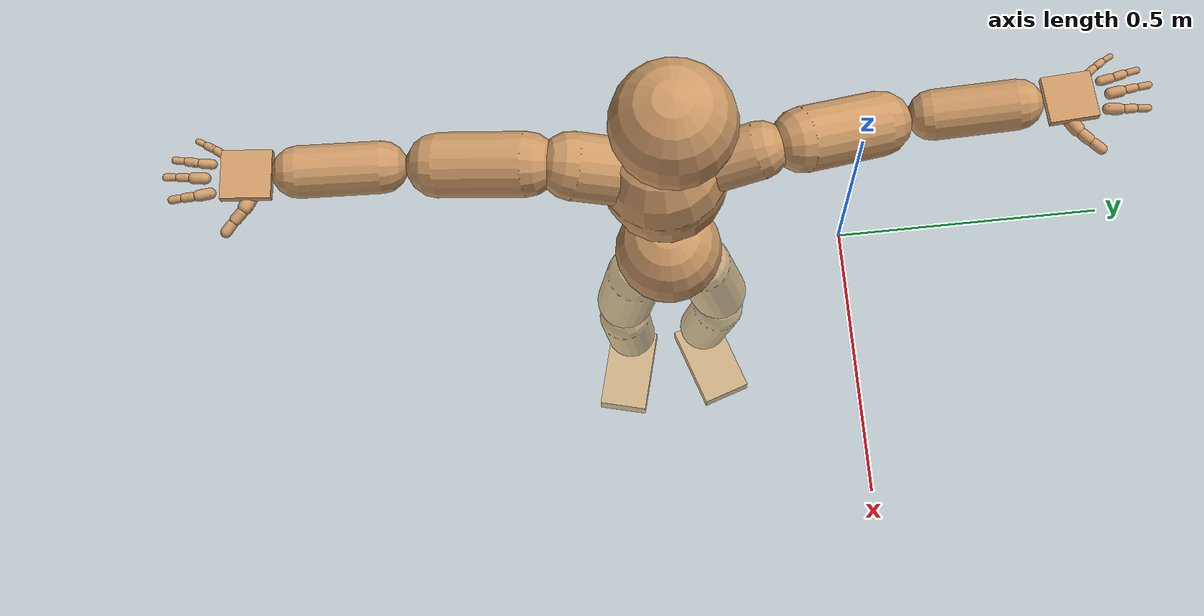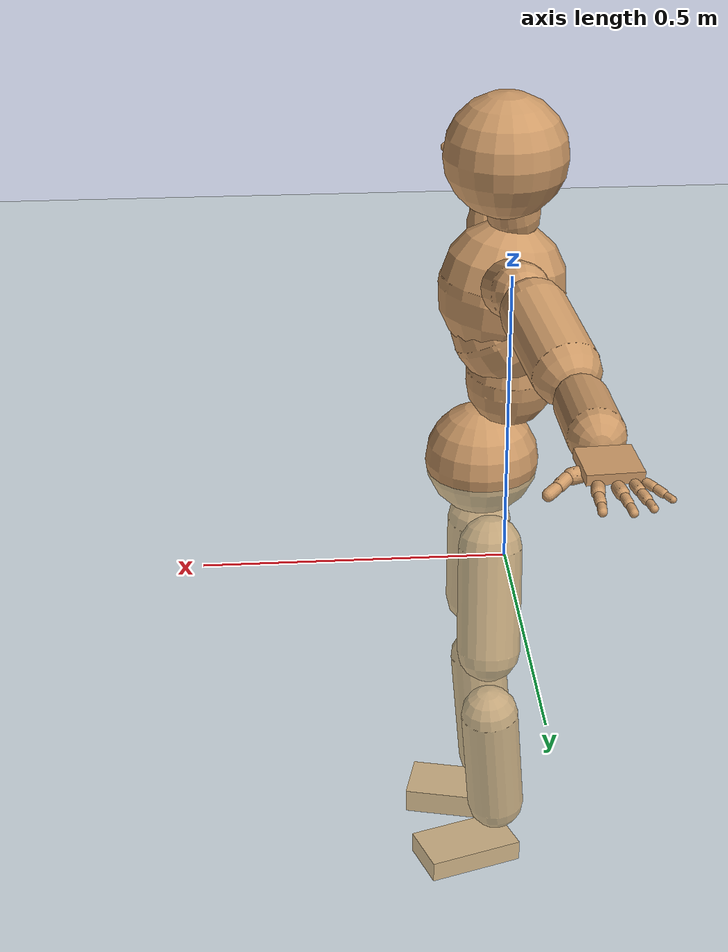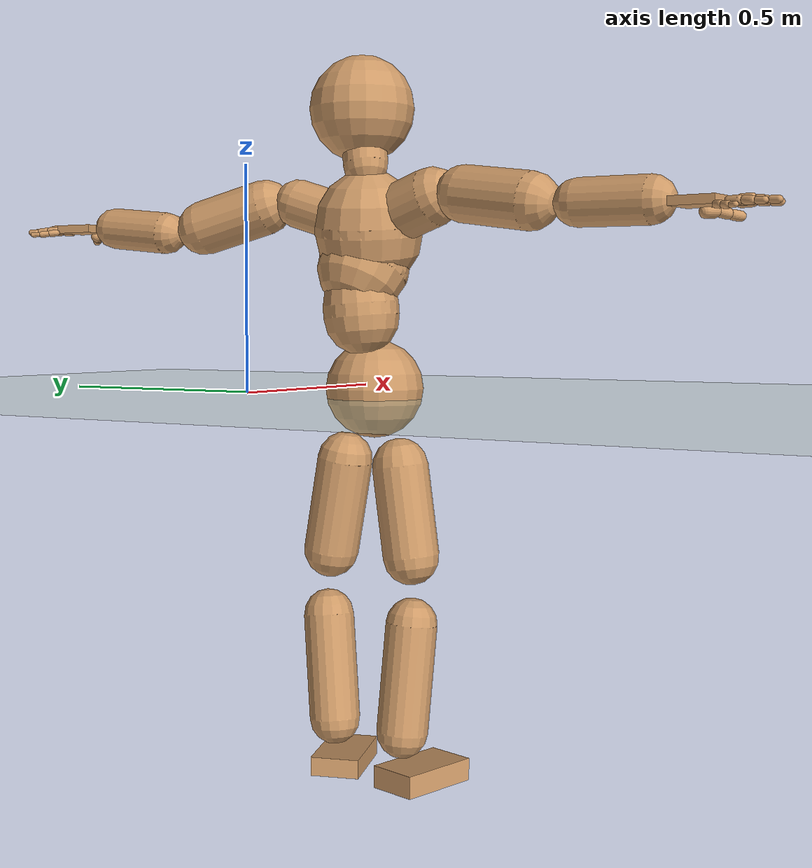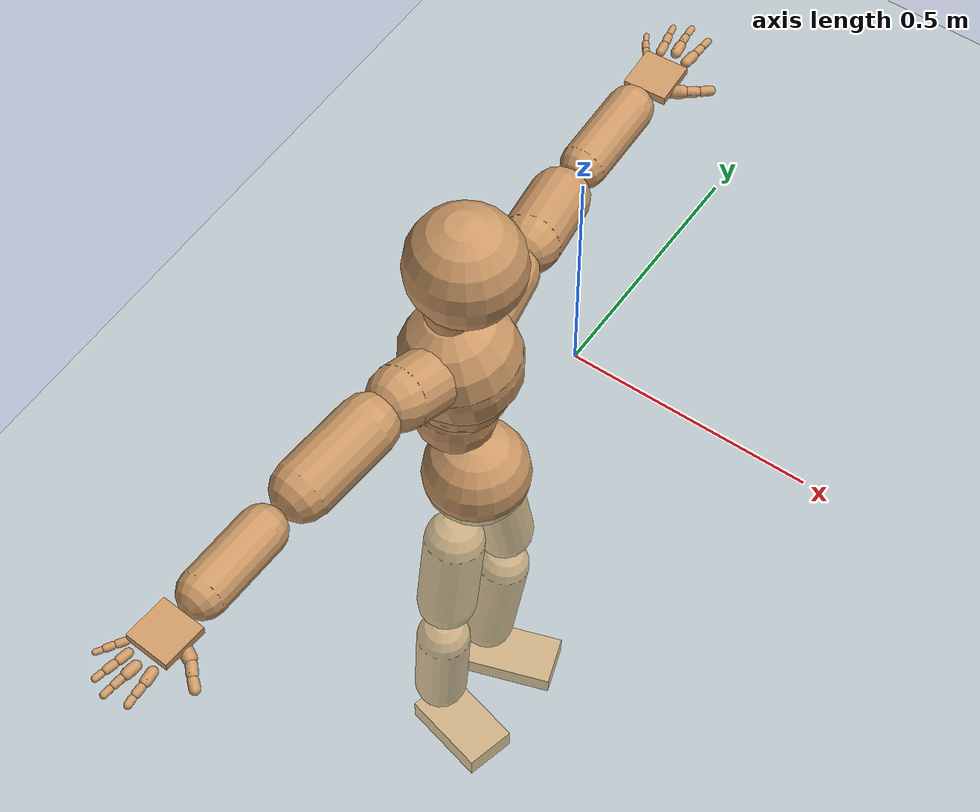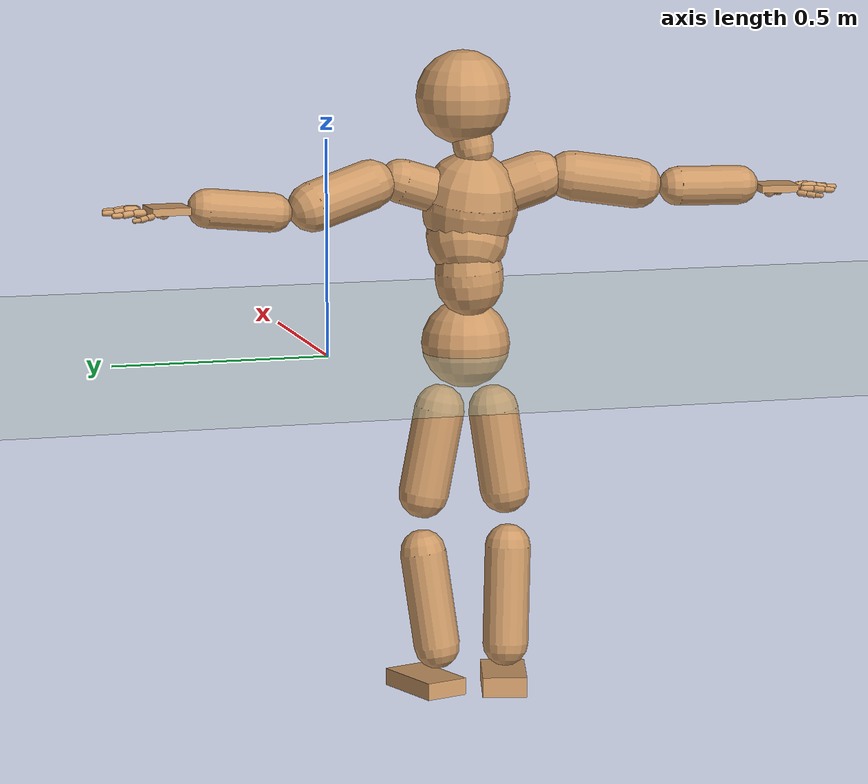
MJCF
<mujoco model="humanoid">
  <compiler coordinate="local" angle="radian"/>
  <default>
    <joint damping="0.0" armature="0.01" stiffness="0.0" limited="true"/>
    <geom conaffinity="1" condim="3" contype="7" margin="0.001" rgba="0.8 0.6 .4 1"/>
  </default>
  <asset>
    <texture type="skybox" builtin="gradient" rgb1=".4 .5 .6" rgb2="0 0 0" width="100" height="100"/>
    <texture builtin="flat" height="1278" mark="cross" markrgb="1 1 1" name="texgeom" random="0.01" rgb1="0.8 0.6 0.4" rgb2="0.8 0.6 0.4" type="cube" width="127"/>
    <texture builtin="checker" height="100" name="texplane" rgb1="0 0 0" rgb2="0.8 0.8 0.8" type="2d" width="100"/>
    <material name="MatPlane" reflectance="0.5" shininess="1" specular="1" texrepeat="60 60" texture="texplane"/>
    <material name="geom" texture="texgeom" texuniform="true"/>
  </asset>
  <worldbody>
    <light cutoff="100" diffuse="1 1 1" dir="-0 0 -1.3" directional="true" exponent="1" pos="0 0 1.3" specular=".1 .1 .1"/>
    <geom conaffinity="1" condim="3" name="floor" pos="0 0 0" rgba="0.8 0.9 0.8 1" size="100 100 .2" type="plane" material="MatPlane"/>
    <body name="Pelvis" pos="0.0018 -0.3282 0.0179">
      <freejoint name="Pelvis"/>
      <geom type="sphere" contype="1" conaffinity="1" density="500" size="0.1025" pos="0.0000 0.0000 0.0000" name="Pelvis"/>
      <body name="L_Hip" pos="-0.0129 0.0535 -0.0848">
        <joint name="L_Hip_x" type="hinge" pos="0 0 0" axis="1 0 0" stiffness="800" damping="80" armature="0.02" range="-180.0000 180.0000"/>
        <joint name="L_Hip_y" type="hinge" pos="0 0 0" axis="0 1 0" stiffness="800" damping="80" armature="0.02" range="-180.0000 180.0000"/>
        <joint name="L_Hip_z" type="hinge" pos="0 0 0" axis="0 0 1" stiffness="800" damping="80" armature="0.02" range="-180.0000 180.0000"/>
        <geom type="capsule" contype="1" conaffinity="1" density="500" fromto="0.0012 0.0123 -0.0655 0.0046 0.0494 -0.2622" size="0.0583" name="L_Hip"/>
        <body name="L_Knee" pos="0.0058 0.0617 -0.3277">
          <joint name="L_Knee_x" type="hinge" pos="0 0 0" axis="1 0 0" stiffness="800" damping="80" armature="0.02" range="-180.0000 180.0000"/>
          <joint name="L_Knee_y" type="hinge" pos="0 0 0" axis="0 1 0" stiffness="800" damping="80" armature="0.02" range="-180.0000 180.0000"/>
          <joint name="L_Knee_z" type="hinge" pos="0 0 0" axis="0 0 1" stiffness="800" damping="80" armature="0.02" range="-180.0000 180.0000"/>
          <geom type="capsule" contype="1" conaffinity="1" density="500" fromto="-0.0064 -0.0092 -0.0733 -0.0258 -0.0369 -0.2932" size="0.0535" name="L_Knee"/>
          <body name="L_Ankle" pos="-0.0322 -0.0461 -0.3664">
            <joint name="L_Ankle_x" type="hinge" pos="0 0 0" axis="1 0 0" stiffness="800" damping="80" armature="0.02" range="-180.0000 180.0000"/>
            <joint name="L_Ankle_y" type="hinge" pos="0 0 0" axis="0 1 0" stiffness="800" damping="80" armature="0.02" range="-180.0000 180.0000"/>
            <joint name="L_Ankle_z" type="hinge" pos="0 0 0" axis="0 0 1" stiffness="800" damping="80" armature="0.02" range="-180.0000 180.0000"/>
            <geom type="box" contype="1" conaffinity="1" density="500" pos="0.0636 0.0212 -0.0259" size="0.0906 0.0519 0.0199" quat="0.9870 0.0000 0.0000 0.1605" name="L_Ankle"/>
            <body name="L_Toe" pos="0.1272 0.0425 -0.0518">
              <joint name="L_Toe_x" type="hinge" pos="0 0 0" axis="1 0 0" stiffness="500" damping="50" armature="0.02" range="-180.0000 180.0000"/>
              <joint name="L_Toe_y" type="hinge" pos="0 0 0" axis="0 1 0" stiffness="500" damping="50" armature="0.02" range="-180.0000 180.0000"/>
              <joint name="L_Toe_z" type="hinge" pos="0 0 0" axis="0 0 1" stiffness="500" damping="50" armature="0.02" range="-180.0000 180.0000"/>
              <geom type="box" contype="1" conaffinity="1" density="500" pos="0.0000 0.0000 0.0278" size="0.0011 0.0025 0.0011" quat="0.9863 0.0000 0.0000 0.1650" name="L_Toe"/>
            </body>
          </body>
        </body>
      </body>
      <body name="R_Hip" pos="-0.005 -0.0561 -0.096">
        <joint name="R_Hip_x" type="hinge" pos="0 0 0" axis="1 0 0" stiffness="800" damping="80" armature="0.02" range="-180.0000 180.0000"/>
        <joint name="R_Hip_y" type="hinge" pos="0 0 0" axis="0 1 0" stiffness="800" damping="80" armature="0.02" range="-180.0000 180.0000"/>
        <joint name="R_Hip_z" type="hinge" pos="0 0 0" axis="0 0 1" stiffness="800" damping="80" armature="0.02" range="-180.0000 180.0000"/>
        <geom type="capsule" contype="1" conaffinity="1" density="500" fromto="-0.0006 -0.0092 -0.0625 -0.0023 -0.0368 -0.2498" size="0.0583" name="R_Hip"/>
        <body name="R_Knee" pos="-0.0029 -0.046 -0.3123">
          <joint name="R_Knee_x" type="hinge" pos="0 0 0" axis="1 0 0" stiffness="800" damping="80" armature="0.02" range="-180.0000 180.0000"/>
          <joint name="R_Knee_y" type="hinge" pos="0 0 0" axis="0 1 0" stiffness="800" damping="80" armature="0.02" range="-180.0000 180.0000"/>
          <joint name="R_Knee_z" type="hinge" pos="0 0 0" axis="0 0 1" stiffness="800" damping="80" armature="0.02" range="-180.0000 180.0000"/>
          <geom type="capsule" contype="1" conaffinity="1" density="500" fromto="-0.0063 0.0036 -0.0755 -0.0253 0.0144 -0.3019" size="0.0534" name="R_Knee"/>
          <body name="R_Ankle" pos="-0.0316 0.018 -0.3773">
            <joint name="R_Ankle_x" type="hinge" pos="0 0 0" axis="1 0 0" stiffness="800" damping="80" armature="0.02" range="-180.0000 180.0000"/>
            <joint name="R_Ankle_y" type="hinge" pos="0 0 0" axis="0 1 0" stiffness="800" damping="80" armature="0.02" range="-180.0000 180.0000"/>
            <joint name="R_Ankle_z" type="hinge" pos="0 0 0" axis="0 0 1" stiffness="800" damping="80" armature="0.02" range="-180.0000 180.0000"/>
            <geom type="box" contype="1" conaffinity="1" density="500" pos="0.0671 -0.0169 -0.0255" size="0.0906 0.0519 0.0235" quat="0.9924 0.0000 0.0000 -0.1228" name="R_Ankle"/>
            <body name="R_Toe" pos="0.1342 -0.0337 -0.051">
              <joint name="R_Toe_x" type="hinge" pos="0 0 0" axis="1 0 0" stiffness="500" damping="50" armature="0.02" range="-180.0000 180.0000"/>
              <joint name="R_Toe_y" type="hinge" pos="0 0 0" axis="0 1 0" stiffness="500" damping="50" armature="0.02" range="-180.0000 180.0000"/>
              <joint name="R_Toe_z" type="hinge" pos="0 0 0" axis="0 0 1" stiffness="500" damping="50" armature="0.02" range="-180.0000 180.0000"/>
              <geom type="box" contype="1" conaffinity="1" density="500" pos="0.0000 0.0000 0.0238" size="0.001 0.0025 0.0011" quat="0.9935 0.0000 0.0000 -0.1141" name="R_Toe"/>
            </body>
          </body>
        </body>
      </body>
      <body name="Torso" pos="-0.0456 -0.0006 0.0979">
        <joint name="Torso_x" type="hinge" pos="0 0 0" axis="1 0 0" stiffness="1000" damping="100" armature="0.02" range="-180.0000 180.0000"/>
        <joint name="Torso_y" type="hinge" pos="0 0 0" axis="0 1 0" stiffness="1000" damping="100" armature="0.02" range="-180.0000 180.0000"/>
        <joint name="Torso_z" type="hinge" pos="0 0 0" axis="0 0 1" stiffness="1000" damping="100" armature="0.02" range="-180.0000 180.0000"/>
        <geom type="capsule" contype="1" conaffinity="1" density="500" fromto="-0.0014 0.0064 0.0781 -0.0009 0.0043 0.0521" size="0.0785" name="Torso"/>
        <body name="Spine" pos="-0.0023 0.0107 0.1302">
          <joint name="Spine_x" type="hinge" pos="0 0 0" axis="1 0 0" stiffness="1000" damping="100" armature="0.02" range="-180.0000 180.0000"/>
          <joint name="Spine_y" type="hinge" pos="0 0 0" axis="0 1 0" stiffness="1000" damping="100" armature="0.02" range="-180.0000 180.0000"/>
          <joint name="Spine_z" type="hinge" pos="0 0 0" axis="0 0 1" stiffness="1000" damping="100" armature="0.02" range="-180.0000 180.0000"/>
          <geom type="capsule" contype="1" conaffinity="1" density="500" fromto="0.0160 -0.0055 0.0314 0.0106 -0.0037 0.0209" size="0.0944" name="Spine"/>
          <body name="Chest" pos="0.0266 -0.0092 0.0523">
            <joint name="Chest_x" type="hinge" pos="0 0 0" axis="1 0 0" stiffness="1000" damping="100" armature="0.02" range="-180.0000 180.0000"/>
            <joint name="Chest_y" type="hinge" pos="0 0 0" axis="0 1 0" stiffness="1000" damping="100" armature="0.02" range="-180.0000 180.0000"/>
            <joint name="Chest_z" type="hinge" pos="0 0 0" axis="0 0 1" stiffness="1000" damping="100" armature="0.02" range="-180.0000 180.0000"/>
            <geom type="capsule" contype="1" conaffinity="1" density="500" fromto="-0.0091 -0.0038 0.0574 -0.0060 -0.0025 0.0383" size="0.1117" name="Chest"/>
            <body name="Neck" pos="-0.0301 -0.012 0.1488">
              <joint name="Neck_x" type="hinge" pos="0 0 0" axis="1 0 0" stiffness="500" damping="50" armature="0.02" range="-180.0000 180.0000"/>
              <joint name="Neck_y" type="hinge" pos="0 0 0" axis="0 1 0" stiffness="500" damping="50" armature="0.02" range="-180.0000 180.0000"/>
              <joint name="Neck_z" type="hinge" pos="0 0 0" axis="0 0 1" stiffness="500" damping="50" armature="0.02" range="-180.0000 180.0000"/>
              <geom type="capsule" contype="1" conaffinity="1" density="500" fromto="0.0047 0.0051 0.0290 0.0190 0.0203 0.1159" size="0.046" name="Neck"/>
              <body name="Head" pos="0.0237 0.0253 0.1449">
                <joint name="Head_x" type="hinge" pos="0 0 0" axis="1 0 0" stiffness="500" damping="50" armature="0.02" range="-180.0000 180.0000"/>
                <joint name="Head_y" type="hinge" pos="0 0 0" axis="0 1 0" stiffness="500" damping="50" armature="0.02" range="-180.0000 180.0000"/>
                <joint name="Head_z" type="hinge" pos="0 0 0" axis="0 0 1" stiffness="500" damping="50" armature="0.02" range="-180.0000 180.0000"/>
                <geom type="sphere" contype="1" conaffinity="1" density="500" size="0.1079" pos="0.0000 0.0000 0.0000" name="Head"/>
              </body>
            </body>
            <body name="L_Thorax" pos="-0.0062 0.0439 0.0687">
              <joint name="L_Thorax_x" type="hinge" pos="0 0 0" axis="1 0 0" stiffness="500" damping="50" armature="0.02" range="-180.0000 180.0000"/>
              <joint name="L_Thorax_y" type="hinge" pos="0 0 0" axis="0 1 0" stiffness="500" damping="50" armature="0.02" range="-180.0000 180.0000"/>
              <joint name="L_Thorax_z" type="hinge" pos="0 0 0" axis="0 0 1" stiffness="500" damping="50" armature="0.02" range="-180.0000 180.0000"/>
              <geom type="capsule" contype="1" conaffinity="1" density="500" fromto="-0.0028 0.0297 0.0095 -0.0112 0.1186 0.0379" size="0.0511" name="L_Thorax"/>
              <body name="L_Shoulder" pos="-0.0139 0.1483 0.0473">
                <joint name="L_Shoulder_x" type="hinge" pos="0 0 0" axis="1 0 0" stiffness="500" damping="50" armature="0.02" range="-180.0000 180.0000"/>
                <joint name="L_Shoulder_y" type="hinge" pos="0 0 0" axis="0 1 0" stiffness="500" damping="50" armature="0.02" range="-180.0000 180.0000"/>
                <joint name="L_Shoulder_z" type="hinge" pos="0 0 0" axis="0 0 1" stiffness="500" damping="50" armature="0.02" range="-180.0000 180.0000"/>
                <geom type="capsule" contype="1" conaffinity="1" density="500" fromto="-0.0106 0.0468 -0.0137 -0.0425 0.1874 -0.0549" size="0.0577" name="L_Shoulder"/>
                <body name="L_Elbow" pos="-0.0531 0.2342 -0.0686">
                  <joint name="L_Elbow_x" type="hinge" pos="0 0 0" axis="1 0 0" stiffness="500" damping="50" armature="0.02" range="-720.0000 720.0000"/>
                  <joint name="L_Elbow_y" type="hinge" pos="0 0 0" axis="0 1 0" stiffness="500" damping="50" armature="0.02" range="-720.0000 720.0000"/>
                  <joint name="L_Elbow_z" type="hinge" pos="0 0 0" axis="0 0 1" stiffness="500" damping="50" armature="0.02" range="-720.0000 720.0000"/>
                  <geom type="capsule" contype="1" conaffinity="1" density="500" fromto="0.0004 0.0494 0.0051 0.0016 0.1978 0.0203" size="0.0448" name="L_Elbow"/>
                  <body name="L_Wrist" pos="0.002 0.2472 0.0253">
                    <joint name="L_Wrist_x" type="hinge" pos="0 0 0" axis="1 0 0" stiffness="300" damping="30" armature="0.02" range="-180.0000 180.0000"/>
                    <joint name="L_Wrist_y" type="hinge" pos="0 0 0" axis="0 1 0" stiffness="300" damping="30" armature="0.02" range="-180.0000 180.0000"/>
                    <joint name="L_Wrist_z" type="hinge" pos="0 0 0" axis="0 0 1" stiffness="300" damping="30" armature="0.02" range="-180.0000 180.0000"/>
                    <geom type="box" contype="1" conaffinity="1" density="500" pos="-0.0028 0.0425 -0.0049" size="0.0441 0.0427 0.0085" quat="0.7298 0.0000 0.0000 -0.6837" name="L_Wrist"/>
                    <body name="L_Index1" pos="0.0227 0.1004 -0.0064">
                      <joint name="L_Index1_x" type="hinge" pos="0 0 0" axis="1 0 0" stiffness="100" damping="10" armature="0.02" range="-180.0000 180.0000"/>
                      <joint name="L_Index1_y" type="hinge" pos="0 0 0" axis="0 1 0" stiffness="100" damping="10" armature="0.02" range="-180.0000 180.0000"/>
                      <joint name="L_Index1_z" type="hinge" pos="0 0 0" axis="0 0 1" stiffness="100" damping="10" armature="0.02" range="-180.0000 180.0000"/>
                      <geom type="capsule" contype="1" conaffinity="1" density="500" fromto="0.0008 0.0066 0.0004 0.0033 0.0263 0.0016" size="0.0101" name="L_Index1"/>
                      <body name="L_Index2" pos="0.0041 0.0329 0.0019">
                        <joint name="L_Index2_x" type="hinge" pos="0 0 0" axis="1 0 0" stiffness="100" damping="10" armature="0.02" range="-180.0000 180.0000"/>
                        <joint name="L_Index2_y" type="hinge" pos="0 0 0" axis="0 1 0" stiffness="100" damping="10" armature="0.02" range="-180.0000 180.0000"/>
                        <joint name="L_Index2_z" type="hinge" pos="0 0 0" axis="0 0 1" stiffness="100" damping="10" armature="0.02" range="-180.0000 180.0000"/>
                        <geom type="capsule" contype="1" conaffinity="1" density="500" fromto="-0.0000 0.0046 -0.0005 -0.0001 0.0185 -0.0022" size="0.0081" name="L_Index2"/>
                        <body name="L_Index3" pos="-0.0002 0.0232 -0.0027">
                          <joint name="L_Index3_x" type="hinge" pos="0 0 0" axis="1 0 0" stiffness="100" damping="10" armature="0.02" range="-180.0000 180.0000"/>
                          <joint name="L_Index3_y" type="hinge" pos="0 0 0" axis="0 1 0" stiffness="100" damping="10" armature="0.02" range="-180.0000 180.0000"/>
                          <joint name="L_Index3_z" type="hinge" pos="0 0 0" axis="0 0 1" stiffness="100" damping="10" armature="0.02" range="-180.0000 180.0000"/>
                          <geom type="capsule" contype="1" conaffinity="1" density="500" fromto="0.0004 0.0050 -0.0001 0.0015 0.0201 -0.0006" size="0.0069" name="L_Index3"/>
                        </body>
                      </body>
                    </body>
                    <body name="L_Middle1" pos="-0.003 0.1084 -0.0036">
                      <joint name="L_Middle1_x" type="hinge" pos="0 0 0" axis="1 0 0" stiffness="100" damping="10" armature="0.02" range="-180.0000 180.0000"/>
                      <joint name="L_Middle1_y" type="hinge" pos="0 0 0" axis="0 1 0" stiffness="100" damping="10" armature="0.02" range="-180.0000 180.0000"/>
                      <joint name="L_Middle1_z" type="hinge" pos="0 0 0" axis="0 0 1" stiffness="100" damping="10" armature="0.02" range="-180.0000 180.0000"/>
                      <geom type="capsule" contype="1" conaffinity="1" density="500" fromto="-0.0009 0.0063 0.0001 -0.0035 0.0253 0.0004" size="0.0102" name="L_Middle1"/>
                      <body name="L_Middle2" pos="-0.0044 0.0316 0.0005">
                        <joint name="L_Middle2_x" type="hinge" pos="0 0 0" axis="1 0 0" stiffness="100" damping="10" armature="0.02" range="-180.0000 180.0000"/>
                        <joint name="L_Middle2_y" type="hinge" pos="0 0 0" axis="0 1 0" stiffness="100" damping="10" armature="0.02" range="-180.0000 180.0000"/>
                        <joint name="L_Middle2_z" type="hinge" pos="0 0 0" axis="0 0 1" stiffness="100" damping="10" armature="0.02" range="-180.0000 180.0000"/>
                        <geom type="capsule" contype="1" conaffinity="1" density="500" fromto="-0.0009 0.0048 -0.0005 -0.0035 0.0192 -0.0022" size="0.0075" name="L_Middle2"/>
                        <body name="L_Middle3" pos="-0.0044 0.024 -0.0027">
                          <joint name="L_Middle3_x" type="hinge" pos="0 0 0" axis="1 0 0" stiffness="100" damping="10" armature="0.02" range="-180.0000 180.0000"/>
                          <joint name="L_Middle3_y" type="hinge" pos="0 0 0" axis="0 1 0" stiffness="100" damping="10" armature="0.02" range="-180.0000 180.0000"/>
                          <joint name="L_Middle3_z" type="hinge" pos="0 0 0" axis="0 0 1" stiffness="100" damping="10" armature="0.02" range="-180.0000 180.0000"/>
                          <geom type="capsule" contype="1" conaffinity="1" density="500" fromto="-0.0005 0.0052 -0.0001 -0.0019 0.0208 -0.0006" size="0.0066" name="L_Middle3"/>
                        </body>
                      </body>
                    </body>
                    <body name="L_Pinky1" pos="-0.0474 0.0821 -0.0128">
                      <joint name="L_Pinky1_x" type="hinge" pos="0 0 0" axis="1 0 0" stiffness="100" damping="10" armature="0.02" range="-180.0000 180.0000"/>
                      <joint name="L_Pinky1_y" type="hinge" pos="0 0 0" axis="0 1 0" stiffness="100" damping="10" armature="0.02" range="-180.0000 180.0000"/>
                      <joint name="L_Pinky1_z" type="hinge" pos="0 0 0" axis="0 0 1" stiffness="100" damping="10" armature="0.02" range="-180.0000 180.0000"/>
                      <geom type="capsule" contype="1" conaffinity="1" density="500" fromto="-0.0025 0.0034 -0.0004 -0.0100 0.0135 -0.0015" size="0.0073" name="L_Pinky1"/>
                      <body name="L_Pinky2" pos="-0.0125 0.0169 -0.0019">
                        <joint name="L_Pinky2_x" type="hinge" pos="0 0 0" axis="1 0 0" stiffness="100" damping="10" armature="0.02" range="-180.0000 180.0000"/>
                        <joint name="L_Pinky2_y" type="hinge" pos="0 0 0" axis="0 1 0" stiffness="100" damping="10" armature="0.02" range="-180.0000 180.0000"/>
                        <joint name="L_Pinky2_z" type="hinge" pos="0 0 0" axis="0 0 1" stiffness="100" damping="10" armature="0.02" range="-180.0000 180.0000"/>
                        <geom type="capsule" contype="1" conaffinity="1" density="500" fromto="-0.0023 0.0033 -0.0005 -0.0091 0.0132 -0.0018" size="0.007" name="L_Pinky2"/>
                        <body name="L_Pinky3" pos="-0.0113 0.0165 -0.0023">
                          <joint name="L_Pinky3_x" type="hinge" pos="0 0 0" axis="1 0 0" stiffness="100" damping="10" armature="0.02" range="-180.0000 180.0000"/>
                          <joint name="L_Pinky3_y" type="hinge" pos="0 0 0" axis="0 1 0" stiffness="100" damping="10" armature="0.02" range="-180.0000 180.0000"/>
                          <joint name="L_Pinky3_z" type="hinge" pos="0 0 0" axis="0 0 1" stiffness="100" damping="10" armature="0.02" range="-180.0000 180.0000"/>
                          <geom type="capsule" contype="1" conaffinity="1" density="500" fromto="-0.0019 0.0037 -0.0001 -0.0075 0.0148 -0.0002" size="0.0053" name="L_Pinky3"/>
                        </body>
                      </body>
                    </body>
                    <body name="L_Ring1" pos="-0.029 0.096 -0.0069">
                      <joint name="L_Ring1_x" type="hinge" pos="0 0 0" axis="1 0 0" stiffness="100" damping="10" armature="0.02" range="-180.0000 180.0000"/>
                      <joint name="L_Ring1_y" type="hinge" pos="0 0 0" axis="0 1 0" stiffness="100" damping="10" armature="0.02" range="-180.0000 180.0000"/>
                      <joint name="L_Ring1_z" type="hinge" pos="0 0 0" axis="0 0 1" stiffness="100" damping="10" armature="0.02" range="-180.0000 180.0000"/>
                      <geom type="capsule" contype="1" conaffinity="1" density="500" fromto="-0.0010 0.0059 0.0001 -0.0041 0.0234 0.0004" size="0.0087" name="L_Ring1"/>
                      <body name="L_Ring2" pos="-0.0051 0.0293 0.0005">
                        <joint name="L_Ring2_x" type="hinge" pos="0 0 0" axis="1 0 0" stiffness="100" damping="10" armature="0.02" range="-180.0000 180.0000"/>
                        <joint name="L_Ring2_y" type="hinge" pos="0 0 0" axis="0 1 0" stiffness="100" damping="10" armature="0.02" range="-180.0000 180.0000"/>
                        <joint name="L_Ring2_z" type="hinge" pos="0 0 0" axis="0 0 1" stiffness="100" damping="10" armature="0.02" range="-180.0000 180.0000"/>
                        <geom type="capsule" contype="1" conaffinity="1" density="500" fromto="-0.0014 0.0047 -0.0005 -0.0054 0.0189 -0.0020" size="0.008" name="L_Ring2"/>
                        <body name="L_Ring3" pos="-0.0068 0.0236 -0.0025">
                          <joint name="L_Ring3_x" type="hinge" pos="0 0 0" axis="1 0 0" stiffness="100" damping="10" armature="0.02" range="-180.0000 180.0000"/>
                          <joint name="L_Ring3_y" type="hinge" pos="0 0 0" axis="0 1 0" stiffness="100" damping="10" armature="0.02" range="-180.0000 180.0000"/>
                          <joint name="L_Ring3_z" type="hinge" pos="0 0 0" axis="0 0 1" stiffness="100" damping="10" armature="0.02" range="-180.0000 180.0000"/>
                          <geom type="capsule" contype="1" conaffinity="1" density="500" fromto="-0.0010 0.0051 -0.0001 -0.0038 0.0205 -0.0004" size="0.0062" name="L_Ring3"/>
                        </body>
                      </body>
                    </body>
                    <body name="L_Thumb1" pos="0.029 0.0377 -0.019">
                      <joint name="L_Thumb1_x" type="hinge" pos="0 0 0" axis="1 0 0" stiffness="100" damping="10" armature="0.02" range="-180.0000 180.0000"/>
                      <joint name="L_Thumb1_y" type="hinge" pos="0 0 0" axis="0 1 0" stiffness="100" damping="10" armature="0.02" range="-180.0000 180.0000"/>
                      <joint name="L_Thumb1_z" type="hinge" pos="0 0 0" axis="0 0 1" stiffness="100" damping="10" armature="0.02" range="-180.0000 180.0000"/>
                      <geom type="capsule" contype="1" conaffinity="1" density="500" fromto="0.0056 0.0032 0.0004 0.0222 0.0126 0.0018" size="0.0129" name="L_Thumb1"/>
                      <body name="L_Thumb2" pos="0.0278 0.0158 0.0022">
                        <joint name="L_Thumb2_x" type="hinge" pos="0 0 0" axis="1 0 0" stiffness="100" damping="10" armature="0.02" range="-180.0000 180.0000"/>
                        <joint name="L_Thumb2_y" type="hinge" pos="0 0 0" axis="0 1 0" stiffness="100" damping="10" armature="0.02" range="-180.0000 180.0000"/>
                        <joint name="L_Thumb2_z" type="hinge" pos="0 0 0" axis="0 0 1" stiffness="100" damping="10" armature="0.02" range="-180.0000 180.0000"/>
                        <geom type="capsule" contype="1" conaffinity="1" density="500" fromto="0.0035 0.0038 -0.0011 0.0139 0.0152 -0.0045" size="0.0104" name="L_Thumb2"/>
                        <body name="L_Thumb3" pos="0.0174 0.019 -0.0057">
                          <joint name="L_Thumb3_x" type="hinge" pos="0 0 0" axis="1 0 0" stiffness="100" damping="10" armature="0.02" range="-180.0000 180.0000"/>
                          <joint name="L_Thumb3_y" type="hinge" pos="0 0 0" axis="0 1 0" stiffness="100" damping="10" armature="0.02" range="-180.0000 180.0000"/>
                          <joint name="L_Thumb3_z" type="hinge" pos="0 0 0" axis="0 0 1" stiffness="100" damping="10" armature="0.02" range="-180.0000 180.0000"/>
                          <geom type="capsule" contype="1" conaffinity="1" density="500" fromto="0.0039 0.0042 -0.0007 0.0155 0.0168 -0.0029" size="0.0096" name="L_Thumb3"/>
                        </body>
                      </body>
                    </body>
                  </body>
                </body>
              </body>
            </body>
            <body name="R_Thorax" pos="-0.009 -0.0508 0.0697">
              <joint name="R_Thorax_x" type="hinge" pos="0 0 0" axis="1 0 0" stiffness="500" damping="50" armature="0.02" range="-180.0000 180.0000"/>
              <joint name="R_Thorax_y" type="hinge" pos="0 0 0" axis="0 1 0" stiffness="500" damping="50" armature="0.02" range="-180.0000 180.0000"/>
              <joint name="R_Thorax_z" type="hinge" pos="0 0 0" axis="0 0 1" stiffness="500" damping="50" armature="0.02" range="-180.0000 180.0000"/>
              <geom type="capsule" contype="1" conaffinity="1" density="500" fromto="-0.0030 -0.0272 0.0091 -0.0120 -0.1090 0.0364" size="0.0602" name="R_Thorax"/>
              <body name="R_Shoulder" pos="-0.015 -0.1362 0.0455">
                <joint name="R_Shoulder_x" type="hinge" pos="0 0 0" axis="1 0 0" stiffness="500" damping="50" armature="0.02" range="-180.0000 180.0000"/>
                <joint name="R_Shoulder_y" type="hinge" pos="0 0 0" axis="0 1 0" stiffness="500" damping="50" armature="0.02" range="-180.0000 180.0000"/>
                <joint name="R_Shoulder_z" type="hinge" pos="0 0 0" axis="0 0 1" stiffness="500" damping="50" armature="0.02" range="-180.0000 180.0000"/>
                <geom type="capsule" contype="1" conaffinity="1" density="500" fromto="-0.0072 -0.0503 -0.0072 -0.0288 -0.2013 -0.0289" size="0.057" name="R_Shoulder"/>
                <body name="R_Elbow" pos="-0.036 -0.2516 -0.0361">
                  <joint name="R_Elbow_x" type="hinge" pos="0 0 0" axis="1 0 0" stiffness="500" damping="50" armature="0.02" range="-720.0000 720.0000"/>
                  <joint name="R_Elbow_y" type="hinge" pos="0 0 0" axis="0 1 0" stiffness="500" damping="50" armature="0.02" range="-720.0000 720.0000"/>
                  <joint name="R_Elbow_z" type="hinge" pos="0 0 0" axis="0 0 1" stiffness="500" damping="50" armature="0.02" range="-720.0000 720.0000"/>
                  <geom type="capsule" contype="1" conaffinity="1" density="500" fromto="-0.0020 -0.0482 -0.0005 -0.0080 -0.1927 -0.0020" size="0.0457" name="R_Elbow"/>
                  <body name="R_Wrist" pos="-0.01 -0.2409 -0.0024">
                    <joint name="R_Wrist_x" type="hinge" pos="0 0 0" axis="1 0 0" stiffness="300" damping="30" armature="0.02" range="-180.0000 180.0000"/>
                    <joint name="R_Wrist_y" type="hinge" pos="0 0 0" axis="0 1 0" stiffness="300" damping="30" armature="0.02" range="-180.0000 180.0000"/>
                    <joint name="R_Wrist_z" type="hinge" pos="0 0 0" axis="0 0 1" stiffness="300" damping="30" armature="0.02" range="-180.0000 180.0000"/>
                    <geom type="box" contype="1" conaffinity="1" density="500" pos="-0.0034 -0.0422 -0.0067" size="0.0441 0.0439 0.0086" quat="0.7347 0.0000 0.0000 0.6784" name="R_Wrist"/>
                    <body name="R_Index1" pos="0.0215 -0.0999 -0.0102">
                      <joint name="R_Index1_x" type="hinge" pos="0 0 0" axis="1 0 0" stiffness="100" damping="10" armature="0.02" range="-180.0000 180.0000"/>
                      <joint name="R_Index1_y" type="hinge" pos="0 0 0" axis="0 1 0" stiffness="100" damping="10" armature="0.02" range="-180.0000 180.0000"/>
                      <joint name="R_Index1_z" type="hinge" pos="0 0 0" axis="0 0 1" stiffness="100" damping="10" armature="0.02" range="-180.0000 180.0000"/>
                      <geom type="capsule" contype="1" conaffinity="1" density="500" fromto="0.0008 -0.0066 0.0004 0.0033 -0.0263 0.0016" size="0.0101" name="R_Index1"/>
                      <body name="R_Index2" pos="0.0041 -0.0329 0.0019">
                        <joint name="R_Index2_x" type="hinge" pos="0 0 0" axis="1 0 0" stiffness="100" damping="10" armature="0.02" range="-180.0000 180.0000"/>
                        <joint name="R_Index2_y" type="hinge" pos="0 0 0" axis="0 1 0" stiffness="100" damping="10" armature="0.02" range="-180.0000 180.0000"/>
                        <joint name="R_Index2_z" type="hinge" pos="0 0 0" axis="0 0 1" stiffness="100" damping="10" armature="0.02" range="-180.0000 180.0000"/>
                        <geom type="capsule" contype="1" conaffinity="1" density="500" fromto="-0.0000 -0.0046 -0.0005 -0.0001 -0.0185 -0.0022" size="0.0081" name="R_Index2"/>
                        <body name="R_Index3" pos="-0.0002 -0.0232 -0.0027">
                          <joint name="R_Index3_x" type="hinge" pos="0 0 0" axis="1 0 0" stiffness="100" damping="10" armature="0.02" range="-180.0000 180.0000"/>
                          <joint name="R_Index3_y" type="hinge" pos="0 0 0" axis="0 1 0" stiffness="100" damping="10" armature="0.02" range="-180.0000 180.0000"/>
                          <joint name="R_Index3_z" type="hinge" pos="0 0 0" axis="0 0 1" stiffness="100" damping="10" armature="0.02" range="-180.0000 180.0000"/>
                          <geom type="capsule" contype="1" conaffinity="1" density="500" fromto="0.0004 -0.0042 -0.0001 0.0015 -0.0169 -0.0006" size="0.0072" name="R_Index3"/>
                        </body>
                      </body>
                    </body>
                    <body name="R_Middle1" pos="-0.0042 -0.1079 -0.0074">
                      <joint name="R_Middle1_x" type="hinge" pos="0 0 0" axis="1 0 0" stiffness="100" damping="10" armature="0.02" range="-180.0000 180.0000"/>
                      <joint name="R_Middle1_y" type="hinge" pos="0 0 0" axis="0 1 0" stiffness="100" damping="10" armature="0.02" range="-180.0000 180.0000"/>
                      <joint name="R_Middle1_z" type="hinge" pos="0 0 0" axis="0 0 1" stiffness="100" damping="10" armature="0.02" range="-180.0000 180.0000"/>
                      <geom type="capsule" contype="1" conaffinity="1" density="500" fromto="-0.0009 -0.0063 0.0001 -0.0035 -0.0253 0.0004" size="0.0102" name="R_Middle1"/>
                      <body name="R_Middle2" pos="-0.0044 -0.0316 0.0005">
                        <joint name="R_Middle2_x" type="hinge" pos="0 0 0" axis="1 0 0" stiffness="100" damping="10" armature="0.02" range="-180.0000 180.0000"/>
                        <joint name="R_Middle2_y" type="hinge" pos="0 0 0" axis="0 1 0" stiffness="100" damping="10" armature="0.02" range="-180.0000 180.0000"/>
                        <joint name="R_Middle2_z" type="hinge" pos="0 0 0" axis="0 0 1" stiffness="100" damping="10" armature="0.02" range="-180.0000 180.0000"/>
                        <geom type="capsule" contype="1" conaffinity="1" density="500" fromto="-0.0009 -0.0048 -0.0005 -0.0035 -0.0192 -0.0022" size="0.0075" name="R_Middle2"/>
                        <body name="R_Middle3" pos="-0.0044 -0.024 -0.0027">
                          <joint name="R_Middle3_x" type="hinge" pos="0 0 0" axis="1 0 0" stiffness="100" damping="10" armature="0.02" range="-180.0000 180.0000"/>
                          <joint name="R_Middle3_y" type="hinge" pos="0 0 0" axis="0 1 0" stiffness="100" damping="10" armature="0.02" range="-180.0000 180.0000"/>
                          <joint name="R_Middle3_z" type="hinge" pos="0 0 0" axis="0 0 1" stiffness="100" damping="10" armature="0.02" range="-180.0000 180.0000"/>
                          <geom type="capsule" contype="1" conaffinity="1" density="500" fromto="-0.0005 -0.0044 -0.0001 -0.0019 -0.0176 -0.0006" size="0.0069" name="R_Middle3"/>
                        </body>
                      </body>
                    </body>
                    <body name="R_Pinky1" pos="-0.0486 -0.0816 -0.0166">
                      <joint name="R_Pinky1_x" type="hinge" pos="0 0 0" axis="1 0 0" stiffness="100" damping="10" armature="0.02" range="-180.0000 180.0000"/>
                      <joint name="R_Pinky1_y" type="hinge" pos="0 0 0" axis="0 1 0" stiffness="100" damping="10" armature="0.02" range="-180.0000 180.0000"/>
                      <joint name="R_Pinky1_z" type="hinge" pos="0 0 0" axis="0 0 1" stiffness="100" damping="10" armature="0.02" range="-180.0000 180.0000"/>
                      <geom type="capsule" contype="1" conaffinity="1" density="500" fromto="-0.0025 -0.0034 -0.0004 -0.0100 -0.0135 -0.0015" size="0.0073" name="R_Pinky1"/>
                      <body name="R_Pinky2" pos="-0.0125 -0.0169 -0.0019">
                        <joint name="R_Pinky2_x" type="hinge" pos="0 0 0" axis="1 0 0" stiffness="100" damping="10" armature="0.02" range="-180.0000 180.0000"/>
                        <joint name="R_Pinky2_y" type="hinge" pos="0 0 0" axis="0 1 0" stiffness="100" damping="10" armature="0.02" range="-180.0000 180.0000"/>
                        <joint name="R_Pinky2_z" type="hinge" pos="0 0 0" axis="0 0 1" stiffness="100" damping="10" armature="0.02" range="-180.0000 180.0000"/>
                        <geom type="capsule" contype="1" conaffinity="1" density="500" fromto="-0.0023 -0.0033 -0.0005 -0.0091 -0.0132 -0.0018" size="0.007" name="R_Pinky2"/>
                        <body name="R_Pinky3" pos="-0.0113 -0.0165 -0.0023">
                          <joint name="R_Pinky3_x" type="hinge" pos="0 0 0" axis="1 0 0" stiffness="100" damping="10" armature="0.02" range="-180.0000 180.0000"/>
                          <joint name="R_Pinky3_y" type="hinge" pos="0 0 0" axis="0 1 0" stiffness="100" damping="10" armature="0.02" range="-180.0000 180.0000"/>
                          <joint name="R_Pinky3_z" type="hinge" pos="0 0 0" axis="0 0 1" stiffness="100" damping="10" armature="0.02" range="-180.0000 180.0000"/>
                          <geom type="capsule" contype="1" conaffinity="1" density="500" fromto="-0.0019 -0.0029 -0.0001 -0.0075 -0.0116 -0.0002" size="0.0055" name="R_Pinky3"/>
                        </body>
                      </body>
                    </body>
                    <body name="R_Ring1" pos="-0.0302 -0.0955 -0.0106">
                      <joint name="R_Ring1_x" type="hinge" pos="0 0 0" axis="1 0 0" stiffness="100" damping="10" armature="0.02" range="-180.0000 180.0000"/>
                      <joint name="R_Ring1_y" type="hinge" pos="0 0 0" axis="0 1 0" stiffness="100" damping="10" armature="0.02" range="-180.0000 180.0000"/>
                      <joint name="R_Ring1_z" type="hinge" pos="0 0 0" axis="0 0 1" stiffness="100" damping="10" armature="0.02" range="-180.0000 180.0000"/>
                      <geom type="capsule" contype="1" conaffinity="1" density="500" fromto="-0.0010 -0.0059 0.0001 -0.0041 -0.0234 0.0004" size="0.0087" name="R_Ring1"/>
                      <body name="R_Ring2" pos="-0.0051 -0.0293 0.0005">
                        <joint name="R_Ring2_x" type="hinge" pos="0 0 0" axis="1 0 0" stiffness="100" damping="10" armature="0.02" range="-180.0000 180.0000"/>
                        <joint name="R_Ring2_y" type="hinge" pos="0 0 0" axis="0 1 0" stiffness="100" damping="10" armature="0.02" range="-180.0000 180.0000"/>
                        <joint name="R_Ring2_z" type="hinge" pos="0 0 0" axis="0 0 1" stiffness="100" damping="10" armature="0.02" range="-180.0000 180.0000"/>
                        <geom type="capsule" contype="1" conaffinity="1" density="500" fromto="-0.0014 -0.0047 -0.0005 -0.0054 -0.0189 -0.0020" size="0.008" name="R_Ring2"/>
                        <body name="R_Ring3" pos="-0.0068 -0.0236 -0.0025">
                          <joint name="R_Ring3_x" type="hinge" pos="0 0 0" axis="1 0 0" stiffness="100" damping="10" armature="0.02" range="-180.0000 180.0000"/>
                          <joint name="R_Ring3_y" type="hinge" pos="0 0 0" axis="0 1 0" stiffness="100" damping="10" armature="0.02" range="-180.0000 180.0000"/>
                          <joint name="R_Ring3_z" type="hinge" pos="0 0 0" axis="0 0 1" stiffness="100" damping="10" armature="0.02" range="-180.0000 180.0000"/>
                          <geom type="capsule" contype="1" conaffinity="1" density="500" fromto="-0.0010 -0.0043 -0.0001 -0.0038 -0.0173 -0.0004" size="0.0065" name="R_Ring3"/>
                        </body>
                      </body>
                    </body>
                    <body name="R_Thumb1" pos="0.0278 -0.0372 -0.0227">
                      <joint name="R_Thumb1_x" type="hinge" pos="0 0 0" axis="1 0 0" stiffness="100" damping="10" armature="0.02" range="-180.0000 180.0000"/>
                      <joint name="R_Thumb1_y" type="hinge" pos="0 0 0" axis="0 1 0" stiffness="100" damping="10" armature="0.02" range="-180.0000 180.0000"/>
                      <joint name="R_Thumb1_z" type="hinge" pos="0 0 0" axis="0 0 1" stiffness="100" damping="10" armature="0.02" range="-180.0000 180.0000"/>
                      <geom type="capsule" contype="1" conaffinity="1" density="500" fromto="0.0056 -0.0032 0.0004 0.0222 -0.0126 0.0018" size="0.0129" name="R_Thumb1"/>
                      <body name="R_Thumb2" pos="0.0278 -0.0158 0.0022">
                        <joint name="R_Thumb2_x" type="hinge" pos="0 0 0" axis="1 0 0" stiffness="100" damping="10" armature="0.02" range="-180.0000 180.0000"/>
                        <joint name="R_Thumb2_y" type="hinge" pos="0 0 0" axis="0 1 0" stiffness="100" damping="10" armature="0.02" range="-180.0000 180.0000"/>
                        <joint name="R_Thumb2_z" type="hinge" pos="0 0 0" axis="0 0 1" stiffness="100" damping="10" armature="0.02" range="-180.0000 180.0000"/>
                        <geom type="capsule" contype="1" conaffinity="1" density="500" fromto="0.0035 -0.0038 -0.0011 0.0139 -0.0152 -0.0045" size="0.0104" name="R_Thumb2"/>
                        <body name="R_Thumb3" pos="0.0174 -0.019 -0.0057">
                          <joint name="R_Thumb3_x" type="hinge" pos="0 0 0" axis="1 0 0" stiffness="100" damping="10" armature="0.02" range="-180.0000 180.0000"/>
                          <joint name="R_Thumb3_y" type="hinge" pos="0 0 0" axis="0 1 0" stiffness="100" damping="10" armature="0.02" range="-180.0000 180.0000"/>
                          <joint name="R_Thumb3_z" type="hinge" pos="0 0 0" axis="0 0 1" stiffness="100" damping="10" armature="0.02" range="-180.0000 180.0000"/>
                          <geom type="capsule" contype="1" conaffinity="1" density="500" fromto="0.0039 -0.0034 -0.0007 0.0155 -0.0136 -0.0029" size="0.0098" name="R_Thumb3"/>
                        </body>
                      </body>
                    </body>
                  </body>
                </body>
              </body>
            </body>
          </body>
        </body>
      </body>
    </body>
  </worldbody>
  <actuator>
    <motor name="L_Hip_x" joint="L_Hip_x" gear="500"/>
    <motor name="L_Hip_y" joint="L_Hip_y" gear="500"/>
    <motor name="L_Hip_z" joint="L_Hip_z" gear="500"/>
    <motor name="L_Knee_x" joint="L_Knee_x" gear="500"/>
    <motor name="L_Knee_y" joint="L_Knee_y" gear="500"/>
    <motor name="L_Knee_z" joint="L_Knee_z" gear="500"/>
    <motor name="L_Ankle_x" joint="L_Ankle_x" gear="500"/>
    <motor name="L_Ankle_y" joint="L_Ankle_y" gear="500"/>
    <motor name="L_Ankle_z" joint="L_Ankle_z" gear="500"/>
    <motor name="L_Toe_x" joint="L_Toe_x" gear="500"/>
    <motor name="L_Toe_y" joint="L_Toe_y" gear="500"/>
    <motor name="L_Toe_z" joint="L_Toe_z" gear="500"/>
    <motor name="R_Hip_x" joint="R_Hip_x" gear="500"/>
    <motor name="R_Hip_y" joint="R_Hip_y" gear="500"/>
    <motor name="R_Hip_z" joint="R_Hip_z" gear="500"/>
    <motor name="R_Knee_x" joint="R_Knee_x" gear="500"/>
    <motor name="R_Knee_y" joint="R_Knee_y" gear="500"/>
    <motor name="R_Knee_z" joint="R_Knee_z" gear="500"/>
    <motor name="R_Ankle_x" joint="R_Ankle_x" gear="500"/>
    <motor name="R_Ankle_y" joint="R_Ankle_y" gear="500"/>
    <motor name="R_Ankle_z" joint="R_Ankle_z" gear="500"/>
    <motor name="R_Toe_x" joint="R_Toe_x" gear="500"/>
    <motor name="R_Toe_y" joint="R_Toe_y" gear="500"/>
    <motor name="R_Toe_z" joint="R_Toe_z" gear="500"/>
    <motor name="Torso_x" joint="Torso_x" gear="500"/>
    <motor name="Torso_y" joint="Torso_y" gear="500"/>
    <motor name="Torso_z" joint="Torso_z" gear="500"/>
    <motor name="Spine_x" joint="Spine_x" gear="500"/>
    <motor name="Spine_y" joint="Spine_y" gear="500"/>
    <motor name="Spine_z" joint="Spine_z" gear="500"/>
    <motor name="Chest_x" joint="Chest_x" gear="500"/>
    <motor name="Chest_y" joint="Chest_y" gear="500"/>
    <motor name="Chest_z" joint="Chest_z" gear="500"/>
    <motor name="Neck_x" joint="Neck_x" gear="500"/>
    <motor name="Neck_y" joint="Neck_y" gear="500"/>
    <motor name="Neck_z" joint="Neck_z" gear="500"/>
    <motor name="Head_x" joint="Head_x" gear="500"/>
    <motor name="Head_y" joint="Head_y" gear="500"/>
    <motor name="Head_z" joint="Head_z" gear="500"/>
    <motor name="L_Thorax_x" joint="L_Thorax_x" gear="500"/>
    <motor name="L_Thorax_y" joint="L_Thorax_y" gear="500"/>
    <motor name="L_Thorax_z" joint="L_Thorax_z" gear="500"/>
    <motor name="L_Shoulder_x" joint="L_Shoulder_x" gear="500"/>
    <motor name="L_Shoulder_y" joint="L_Shoulder_y" gear="500"/>
    <motor name="L_Shoulder_z" joint="L_Shoulder_z" gear="500"/>
    <motor name="L_Elbow_x" joint="L_Elbow_x" gear="500"/>
    <motor name="L_Elbow_y" joint="L_Elbow_y" gear="500"/>
    <motor name="L_Elbow_z" joint="L_Elbow_z" gear="500"/>
    <motor name="L_Wrist_x" joint="L_Wrist_x" gear="500"/>
    <motor name="L_Wrist_y" joint="L_Wrist_y" gear="500"/>
    <motor name="L_Wrist_z" joint="L_Wrist_z" gear="500"/>
    <motor name="L_Index1_x" joint="L_Index1_x" gear="500"/>
    <motor name="L_Index1_y" joint="L_Index1_y" gear="500"/>
    <motor name="L_Index1_z" joint="L_Index1_z" gear="500"/>
    <motor name="L_Index2_x" joint="L_Index2_x" gear="500"/>
    <motor name="L_Index2_y" joint="L_Index2_y" gear="500"/>
    <motor name="L_Index2_z" joint="L_Index2_z" gear="500"/>
    <motor name="L_Index3_x" joint="L_Index3_x" gear="500"/>
    <motor name="L_Index3_y" joint="L_Index3_y" gear="500"/>
    <motor name="L_Index3_z" joint="L_Index3_z" gear="500"/>
    <motor name="L_Middle1_x" joint="L_Middle1_x" gear="500"/>
    <motor name="L_Middle1_y" joint="L_Middle1_y" gear="500"/>
    <motor name="L_Middle1_z" joint="L_Middle1_z" gear="500"/>
    <motor name="L_Middle2_x" joint="L_Middle2_x" gear="500"/>
    <motor name="L_Middle2_y" joint="L_Middle2_y" gear="500"/>
    <motor name="L_Middle2_z" joint="L_Middle2_z" gear="500"/>
    <motor name="L_Middle3_x" joint="L_Middle3_x" gear="500"/>
    <motor name="L_Middle3_y" joint="L_Middle3_y" gear="500"/>
    <motor name="L_Middle3_z" joint="L_Middle3_z" gear="500"/>
    <motor name="L_Pinky1_x" joint="L_Pinky1_x" gear="500"/>
    <motor name="L_Pinky1_y" joint="L_Pinky1_y" gear="500"/>
    <motor name="L_Pinky1_z" joint="L_Pinky1_z" gear="500"/>
    <motor name="L_Pinky2_x" joint="L_Pinky2_x" gear="500"/>
    <motor name="L_Pinky2_y" joint="L_Pinky2_y" gear="500"/>
    <motor name="L_Pinky2_z" joint="L_Pinky2_z" gear="500"/>
    <motor name="L_Pinky3_x" joint="L_Pinky3_x" gear="500"/>
    <motor name="L_Pinky3_y" joint="L_Pinky3_y" gear="500"/>
    <motor name="L_Pinky3_z" joint="L_Pinky3_z" gear="500"/>
    <motor name="L_Ring1_x" joint="L_Ring1_x" gear="500"/>
    <motor name="L_Ring1_y" joint="L_Ring1_y" gear="500"/>
    <motor name="L_Ring1_z" joint="L_Ring1_z" gear="500"/>
    <motor name="L_Ring2_x" joint="L_Ring2_x" gear="500"/>
    <motor name="L_Ring2_y" joint="L_Ring2_y" gear="500"/>
    <motor name="L_Ring2_z" joint="L_Ring2_z" gear="500"/>
    <motor name="L_Ring3_x" joint="L_Ring3_x" gear="500"/>
    <motor name="L_Ring3_y" joint="L_Ring3_y" gear="500"/>
    <motor name="L_Ring3_z" joint="L_Ring3_z" gear="500"/>
    <motor name="L_Thumb1_x" joint="L_Thumb1_x" gear="500"/>
    <motor name="L_Thumb1_y" joint="L_Thumb1_y" gear="500"/>
    <motor name="L_Thumb1_z" joint="L_Thumb1_z" gear="500"/>
    <motor name="L_Thumb2_x" joint="L_Thumb2_x" gear="500"/>
    <motor name="L_Thumb2_y" joint="L_Thumb2_y" gear="500"/>
    <motor name="L_Thumb2_z" joint="L_Thumb2_z" gear="500"/>
    <motor name="L_Thumb3_x" joint="L_Thumb3_x" gear="500"/>
    <motor name="L_Thumb3_y" joint="L_Thumb3_y" gear="500"/>
    <motor name="L_Thumb3_z" joint="L_Thumb3_z" gear="500"/>
    <motor name="R_Thorax_x" joint="R_Thorax_x" gear="500"/>
    <motor name="R_Thorax_y" joint="R_Thorax_y" gear="500"/>
    <motor name="R_Thorax_z" joint="R_Thorax_z" gear="500"/>
    <motor name="R_Shoulder_x" joint="R_Shoulder_x" gear="500"/>
    <motor name="R_Shoulder_y" joint="R_Shoulder_y" gear="500"/>
    <motor name="R_Shoulder_z" joint="R_Shoulder_z" gear="500"/>
    <motor name="R_Elbow_x" joint="R_Elbow_x" gear="500"/>
    <motor name="R_Elbow_y" joint="R_Elbow_y" gear="500"/>
    <motor name="R_Elbow_z" joint="R_Elbow_z" gear="500"/>
    <motor name="R_Wrist_x" joint="R_Wrist_x" gear="500"/>
    <motor name="R_Wrist_y" joint="R_Wrist_y" gear="500"/>
    <motor name="R_Wrist_z" joint="R_Wrist_z" gear="500"/>
    <motor name="R_Index1_x" joint="R_Index1_x" gear="500"/>
    <motor name="R_Index1_y" joint="R_Index1_y" gear="500"/>
    <motor name="R_Index1_z" joint="R_Index1_z" gear="500"/>
    <motor name="R_Index2_x" joint="R_Index2_x" gear="500"/>
    <motor name="R_Index2_y" joint="R_Index2_y" gear="500"/>
    <motor name="R_Index2_z" joint="R_Index2_z" gear="500"/>
    <motor name="R_Index3_x" joint="R_Index3_x" gear="500"/>
    <motor name="R_Index3_y" joint="R_Index3_y" gear="500"/>
    <motor name="R_Index3_z" joint="R_Index3_z" gear="500"/>
    <motor name="R_Middle1_x" joint="R_Middle1_x" gear="500"/>
    <motor name="R_Middle1_y" joint="R_Middle1_y" gear="500"/>
    <motor name="R_Middle1_z" joint="R_Middle1_z" gear="500"/>
    <motor name="R_Middle2_x" joint="R_Middle2_x" gear="500"/>
    <motor name="R_Middle2_y" joint="R_Middle2_y" gear="500"/>
    <motor name="R_Middle2_z" joint="R_Middle2_z" gear="500"/>
    <motor name="R_Middle3_x" joint="R_Middle3_x" gear="500"/>
    <motor name="R_Middle3_y" joint="R_Middle3_y" gear="500"/>
    <motor name="R_Middle3_z" joint="R_Middle3_z" gear="500"/>
    <motor name="R_Pinky1_x" joint="R_Pinky1_x" gear="500"/>
    <motor name="R_Pinky1_y" joint="R_Pinky1_y" gear="500"/>
    <motor name="R_Pinky1_z" joint="R_Pinky1_z" gear="500"/>
    <motor name="R_Pinky2_x" joint="R_Pinky2_x" gear="500"/>
    <motor name="R_Pinky2_y" joint="R_Pinky2_y" gear="500"/>
    <motor name="R_Pinky2_z" joint="R_Pinky2_z" gear="500"/>
    <motor name="R_Pinky3_x" joint="R_Pinky3_x" gear="500"/>
    <motor name="R_Pinky3_y" joint="R_Pinky3_y" gear="500"/>
    <motor name="R_Pinky3_z" joint="R_Pinky3_z" gear="500"/>
    <motor name="R_Ring1_x" joint="R_Ring1_x" gear="500"/>
    <motor name="R_Ring1_y" joint="R_Ring1_y" gear="500"/>
    <motor name="R_Ring1_z" joint="R_Ring1_z" gear="500"/>
    <motor name="R_Ring2_x" joint="R_Ring2_x" gear="500"/>
    <motor name="R_Ring2_y" joint="R_Ring2_y" gear="500"/>
    <motor name="R_Ring2_z" joint="R_Ring2_z" gear="500"/>
    <motor name="R_Ring3_x" joint="R_Ring3_x" gear="500"/>
    <motor name="R_Ring3_y" joint="R_Ring3_y" gear="500"/>
    <motor name="R_Ring3_z" joint="R_Ring3_z" gear="500"/>
    <motor name="R_Thumb1_x" joint="R_Thumb1_x" gear="500"/>
    <motor name="R_Thumb1_y" joint="R_Thumb1_y" gear="500"/>
    <motor name="R_Thumb1_z" joint="R_Thumb1_z" gear="500"/>
    <motor name="R_Thumb2_x" joint="R_Thumb2_x" gear="500"/>
    <motor name="R_Thumb2_y" joint="R_Thumb2_y" gear="500"/>
    <motor name="R_Thumb2_z" joint="R_Thumb2_z" gear="500"/>
    <motor name="R_Thumb3_x" joint="R_Thumb3_x" gear="500"/>
    <motor name="R_Thumb3_y" joint="R_Thumb3_y" gear="500"/>
    <motor name="R_Thumb3_z" joint="R_Thumb3_z" gear="500"/>
  </actuator>
  <contact>
    <exclude body1="Torso" body2="Chest"/>
    <exclude body1="Head" body2="Chest"/>
    <exclude body1="R_Knee" body2="R_Toe"/>
    <exclude body1="R_Knee" body2="L_Ankle"/>
    <exclude body1="R_Knee" body2="L_Toe"/>
    <exclude body1="L_Knee" body2="L_Toe"/>
    <exclude body1="L_Knee" body2="R_Ankle"/>
    <exclude body1="L_Knee" body2="R_Toe"/>
    <exclude body1="L_Shoulder" body2="Chest"/>
    <exclude body1="R_Shoulder" body2="Chest"/>
  </contact>
  <sensor/>
  <size njmax="700" nconmax="700"/>
</mujoco>
